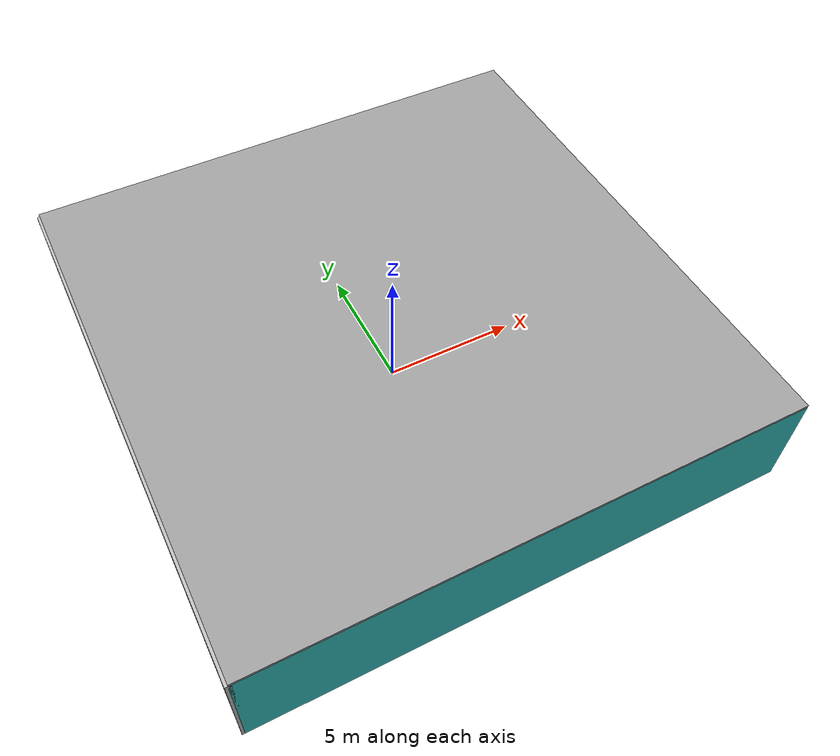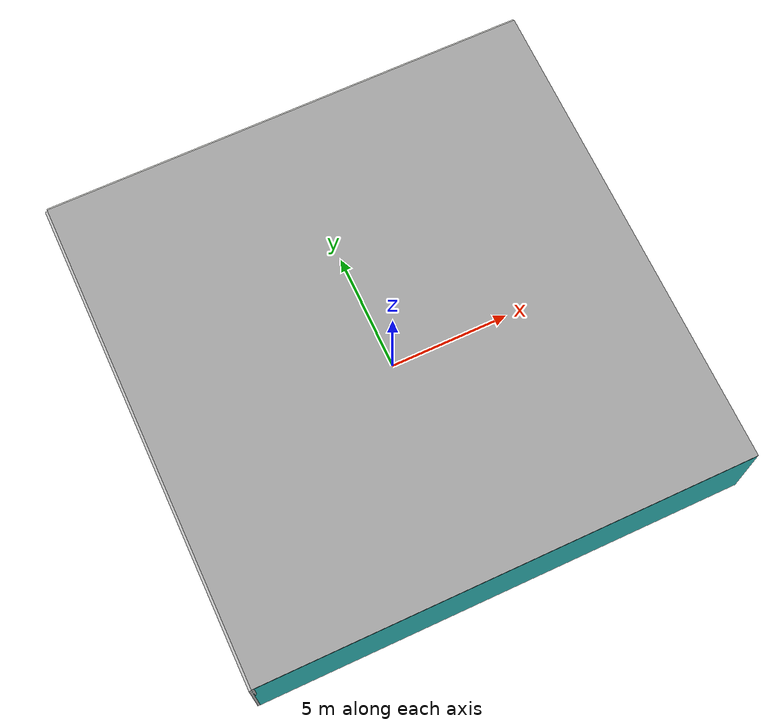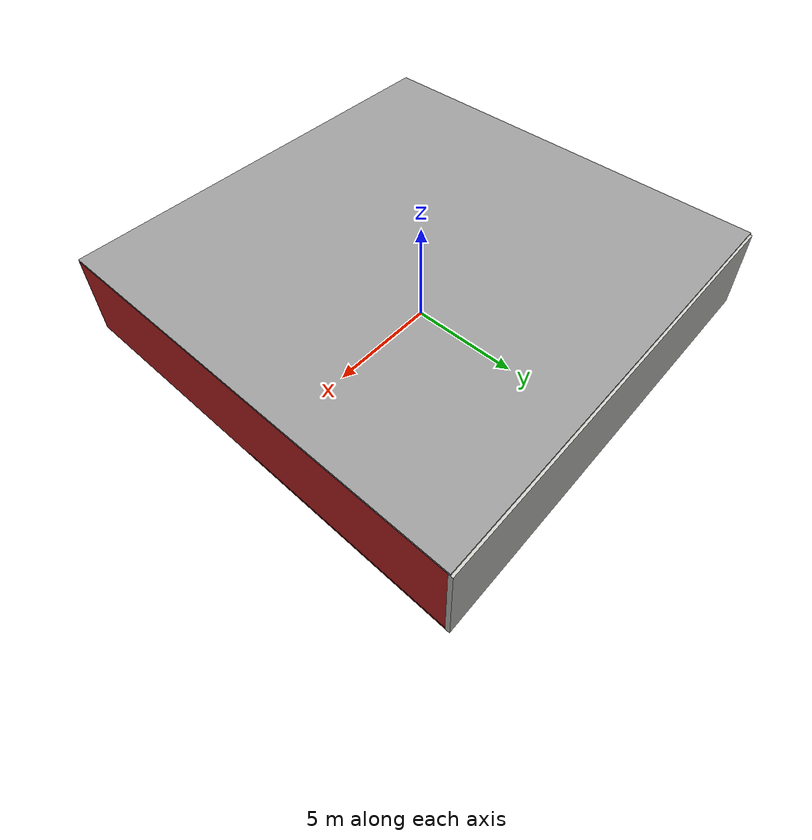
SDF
<sdf version="1.4">
 <world name="default">
  <physics type="ode">
   <max_step_size>0.001</max_step_size>
   <real_time_factor>1</real_time_factor>
   <real_time_update_rate>1000</real_time_update_rate>
   <gravity>0 0 -9.8</gravity>
  </physics>
  <scene><ambient>0.4 0.4 0.4 1</ambient><background>0.7 0.7 0.7 1</background><shadows>1</shadows></scene>
  <model name="Surrounding">
   <static>1</static>
   <link name="Ceiling">
    <collision name="Ceiling_Collision"><geometry><box><size>20 20 0.1</size></box></geometry></collision>
    <visual name="Ceiling_Visual">
     <geometry><box><size>20 20 0.1</size></box></geometry>
     <material>
      <script><uri>file://media/materials/scripts/gazebo.material</uri><name>Gazebo/GreyGradientSky</name></script>
     </material>
    </visual>
    <pose>0 0 4.05 0 0 0</pose>
   </link>
   <link name="Wall_South">
    <collision name="Wall_South_Collision">
     <geometry><box><size>20 0 4</size></box></geometry>
     <pose>0 0 2 0 -0 0</pose>
    </collision>
    <visual name="Wall_South_Visual">
     <pose>0 0 2 0 -0 0</pose>
     <geometry><box><size>20 0 4</size></box></geometry>
     <material>
      <script><uri>file://media/materials/scripts/gazebo.material</uri><name>Gazebo/Turquoise</name></script>
     </material>
    </visual>
    <velocity_decay><linear>0</linear><angular>0</angular></velocity_decay>
    <pose>0 -10 0 0 -0 0</pose>
   </link>
   <link name="Wall_East">
    <collision name="Wall_21_Collision">
     <geometry><box><size>20 0 4</size></box></geometry>
     <pose>0 0 2 0 -0 0</pose>
    </collision>
    <visual name="Wall_21_Visual">
     <pose>0 0 2 0 -0 0</pose>
     <geometry><box><size>20 0 4</size></box></geometry>
     <material>
      <script><uri>file://media/materials/scripts/gazebo.material</uri><name>Gazebo/Red</name></script>
     </material>
    </visual>
    <velocity_decay><linear>0</linear><angular>0</angular></velocity_decay>
    <pose>10 0 0 0 -0 1.5708</pose>
   </link>
   <link name="Wall_North">
    <collision name="Wall_22_Collision">
     <geometry><box><size>20 0.2 4</size></box></geometry>
     <pose>0 0 2 0 -0 0</pose>
    </collision>
    <visual name="Wall_22_Visual">
     <pose>0 0 2 0 -0 0</pose>
     <geometry><box><size>20 0.2 4</size></box></geometry>
     <material>
      <script><uri>file://media/materials/scripts/gazebo.material</uri><name>Gazebo/CeilingTiled</name></script>
     </material>
    </visual>
    <velocity_decay><linear>0</linear><angular>0</angular></velocity_decay>
    <pose>0 10 0 0 -0 0</pose>
   </link>
   <link name="Wall_West">
    <collision name="Wall_23_Collision">
     <geometry><box><size>20 0.2 4</size></box></geometry>
     <pose>0 0 2 0 -0 0</pose>
    </collision>
    <visual name="Wall_23_Visual">
     <pose>0 0 2 0 -0 0</pose>
     <geometry><box><size>20 0.2 4</size></box></geometry>
     <material>
      <script><uri>file://media/materials/scripts/gazebo.material</uri><name>Gazebo/LightOff</name></script>
     </material>
    </visual>
    <velocity_decay><linear>0</linear><angular>0</angular></velocity_decay>
    <pose>-10 0 0 0 0 -1.5708</pose>
   </link>
   <link name="Ground_link">
    <collision name="collision">
     <pose>0 0 .05 0 -0 0</pose>
     <geometry><box><size>20 20 0.1</size></box></geometry>
    </collision>
    <visual name="visual">
     <pose>0 0 .05 0 -0 0</pose>
     <geometry><box><size>20 20 0.1</size></box></geometry>
     <material>
      <script><uri>file://media/materials/scripts/gazebo.material</uri><name>Gazebo/RedTransparent</name></script>
     </material>
    </visual>
   </link>
   <static>1</static>
  </model>
  <spherical_coordinates>
   <surface_model>EARTH_WGS84</surface_model>
   <latitude_deg>0</latitude_deg>
   <longitude_deg>0</longitude_deg>
   <elevation>0</elevation>
   <heading_deg>0</heading_deg>
  </spherical_coordinates>
  <light name="lightball_0" type="diffuse">
   <diffuse>0.8 0.8 0.8 1</diffuse>
   <specular>0.2 0.2 0.2 1</specular>
   <attenuation>
    <range>100</range>
    <constant>0.7</constant>
    <linear>0.01</linear>
    <quadratic>0.001</quadratic>
   </attenuation>
   <direction>-0.5 0.1 -0.9</direction>
   <pose>3.64760996766 1.44496342476 2.11530801846 0 0 0</pose>
  </light>
  <light name="lightball_1" type="diffuse">
   <diffuse>0.8 0.8 0.8 1</diffuse>
   <specular>0.2 0.2 0.2 1</specular>
   <attenuation>
    <range>100</range>
    <constant>0.7</constant>
    <linear>0.01</linear>
    <quadratic>0.001</quadratic>
   </attenuation>
   <direction>-0.5 0.1 -0.9</direction>
   <pose>-9.10283430223 7.0985300135 1.13873848671 0 0 0</pose>
  </light>
  <light name="lightball_2" type="diffuse">
   <diffuse>0.8 0.8 0.8 1</diffuse>
   <specular>0.2 0.2 0.2 1</specular>
   <attenuation>
    <range>100</range>
    <constant>0.7</constant>
    <linear>0.01</linear>
    <quadratic>0.001</quadratic>
   </attenuation>
   <direction>-0.5 0.1 -0.9</direction>
   <pose>7.2083766569 -9.36445132885 2.29691598558 0 0 0</pose>
  </light>
  <light name="lightball_3" type="diffuse">
   <diffuse>0.8 0.8 0.8 1</diffuse>
   <specular>0.2 0.2 0.2 1</specular>
   <attenuation>
    <range>100</range>
    <constant>0.7</constant>
    <linear>0.01</linear>
    <quadratic>0.001</quadratic>
   </attenuation>
   <direction>-0.5 0.1 -0.9</direction>
   <pose>2.04046476021 9.12683160858 3.30821378983 0 0 0</pose>
  </light>
  <light name="lightball_4" type="diffuse">
   <diffuse>0.8 0.8 0.8 1</diffuse>
   <specular>0.2 0.2 0.2 1</specular>
   <attenuation>
    <range>100</range>
    <constant>0.7</constant>
    <linear>0.01</linear>
    <quadratic>0.001</quadratic>
   </attenuation>
   <direction>-0.5 0.1 -0.9</direction>
   <pose>-1.03398241111 2.95757915079 0.790585028878 0 0 0</pose>
  </light>
  <light name="lightball_5" type="diffuse">
   <diffuse>0.8 0.8 0.8 1</diffuse>
   <specular>0.2 0.2 0.2 1</specular>
   <attenuation>
    <range>100</range>
    <constant>0.7</constant>
    <linear>0.01</linear>
    <quadratic>0.001</quadratic>
   </attenuation>
   <direction>-0.5 0.1 -0.9</direction>
   <pose>-3.75013605601 -4.39227880148 1.60338238951 0 0 0</pose>
  </light>
  <light name="lightball_6" type="diffuse">
   <diffuse>0.8 0.8 0.8 1</diffuse>
   <specular>0.2 0.2 0.2 1</specular>
   <attenuation>
    <range>100</range>
    <constant>0.7</constant>
    <linear>0.01</linear>
    <quadratic>0.001</quadratic>
   </attenuation>
   <direction>-0.5 0.1 -0.9</direction>
   <pose>8.32205670746 -3.77404941137 2.20076673516 0 0 0</pose>
  </light>
  <light name="lightball_7" type="diffuse">
   <diffuse>0.8 0.8 0.8 1</diffuse>
   <specular>0.2 0.2 0.2 1</specular>
   <attenuation>
    <range>100</range>
    <constant>0.7</constant>
    <linear>0.01</linear>
    <quadratic>0.001</quadratic>
   </attenuation>
   <direction>-0.5 0.1 -0.9</direction>
   <pose>3.825463484 4.35548839545 1.82835944444 0 0 0</pose>
  </light>
  <light name="lightball_8" type="diffuse">
   <diffuse>0.8 0.8 0.8 1</diffuse>
   <specular>0.2 0.2 0.2 1</specular>
   <attenuation>
    <range>100</range>
    <constant>0.7</constant>
    <linear>0.01</linear>
    <quadratic>0.001</quadratic>
   </attenuation>
   <direction>-0.5 0.1 -0.9</direction>
   <pose>-7.7376895057 4.60650504911 2.21888985787 0 0 0</pose>
  </light>
  <light name="lightball_9" type="diffuse">
   <diffuse>0.8 0.8 0.8 1</diffuse>
   <specular>0.2 0.2 0.2 1</specular>
   <attenuation>
    <range>100</range>
    <constant>0.7</constant>
    <linear>0.01</linear>
    <quadratic>0.001</quadratic>
   </attenuation>
   <direction>-0.5 0.1 -0.9</direction>
   <pose>7.69178343788 -0.548578465849 0.890916537488 0 0 0</pose>
  </light>
  <light name="lightball_10" type="diffuse">
   <diffuse>0.8 0.8 0.8 1</diffuse>
   <specular>0.2 0.2 0.2 1</specular>
   <attenuation>
    <range>100</range>
    <constant>0.7</constant>
    <linear>0.01</linear>
    <quadratic>0.001</quadratic>
   </attenuation>
   <direction>-0.5 0.1 -0.9</direction>
   <pose>4.19662246303 -6.16014503644 1.01111479713 0 0 0</pose>
  </light>
  <light name="lightball_11" type="diffuse">
   <diffuse>0.8 0.8 0.8 1</diffuse>
   <specular>0.2 0.2 0.2 1</specular>
   <attenuation>
    <range>100</range>
    <constant>0.7</constant>
    <linear>0.01</linear>
    <quadratic>0.001</quadratic>
   </attenuation>
   <direction>-0.5 0.1 -0.9</direction>
   <pose>0.931632870258 -7.87135247992 2.23631678132 0 0 0</pose>
  </light>
  <include><uri>model://table</uri><pose>-6.79118013681 1.72391837299 0 0 0 0.209805220548</pose></include>
  <include>
   <uri>model://construction_cone</uri>
   <pose>2.02603332043 -2.32164870876 0 0 0 0.157635979071</pose>
  </include>
  <include><uri>model://cabinet</uri><pose>1.07158044195 8.40661133103 0 0 0 0.914098087291</pose></include>
  <include>
   <uri>model://construction_cone</uri>
   <pose>8.66557707637 2.4107997257 0 0 0 0.0130087703902</pose>
  </include>
  <include><uri>model://table</uri><pose>6.97785700431 8.49104943745 0 0 0 1.70658499518</pose></include>
 </world>
</sdf>

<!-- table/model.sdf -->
<sdf version="1.5">
  <model name="table">
    <static>true</static>
    <link name="link">
      <collision name="surface">
        <pose>0 0 1.0 0 0 0</pose>
        <geometry>
          <box>
            <size>1.5 0.8 0.03</size>
          </box>
        </geometry>
        <surface>
          <friction>
            <ode>
              <mu>0.6</mu>
              <mu2>0.6</mu2>
            </ode>
          </friction>
        </surface>
      </collision>
      <visual name="visual1">
        <pose>0 0 1.0 0 0 0</pose>
        <geometry>
          <box>
            <size>1.5 0.8 0.03</size>
          </box>
        </geometry>
        <material>
          <script>
            <uri>model://media/materials/scripts/gazebo.material</uri>
            <name>Gazebo/Wood</name>
          </script>
        </material>
      </visual>
      <collision name="front_left_leg">
        <pose>0.68 0.38 0.5 0 0 0</pose>
        <geometry>
          <cylinder>
            <radius>0.02</radius>
            <length>1.0</length>
          </cylinder>
        </geometry>
      </collision>
      <visual name="front_left_leg">
        <pose>0.68 0.38 0.5 0 0 0</pose>
        <geometry>
          <cylinder>
            <radius>0.02</radius>
            <length>1.0</length>
          </cylinder>
        </geometry>
        <material>
          <script>
            <uri>model://media/materials/scripts/gazebo.material</uri>
            <name>Gazebo/Grey</name>
          </script>
        </material>
      </visual>
      <collision name="front_right_leg">
        <pose>0.68 -0.38 0.5 0 0 0</pose>
        <geometry>
          <cylinder>
            <radius>0.02</radius>
            <length>1.0</length>
          </cylinder>
        </geometry>
      </collision>
      <visual name="front_right_leg">
        <pose>0.68 -0.38 0.5 0 0 0</pose>
        <geometry>
          <cylinder>
            <radius>0.02</radius>
            <length>1.0</length>
          </cylinder>
        </geometry>
        <material>
          <script>
            <uri>model://media/materials/scripts/gazebo.material</uri>
            <name>Gazebo/Grey</name>
          </script>
        </material>
      </visual>
      <collision name="back_right_leg">
        <pose>-0.68 -0.38 0.5 0 0 0</pose>
        <geometry>
          <cylinder>
            <radius>0.02</radius>
            <length>1.0</length>
          </cylinder>
        </geometry>
      </collision>
      <visual name="back_right_leg">
        <pose>-0.68 -0.38 0.5 0 0 0</pose>
        <geometry>
          <cylinder>
            <radius>0.02</radius>
            <length>1.0</length>
          </cylinder>
        </geometry>
        <material>
          <script>
            <uri>model://media/materials/scripts/gazebo.material</uri>
            <name>Gazebo/Grey</name>
          </script>
        </material>
      </visual>
      <collision name="back_left_leg">
        <pose>-0.68 0.38 0.5 0 0 0</pose>
        <geometry>
          <cylinder>
            <radius>0.02</radius>
            <length>1.0</length>
          </cylinder>
        </geometry>
      </collision>
      <visual name="back_left_leg">
        <pose>-0.68 0.38 0.5 0 0 0</pose>
        <geometry>
          <cylinder>
            <radius>0.02</radius>
            <length>1.0</length>
          </cylinder>
        </geometry>
        <material>
          <script>
            <uri>model://media/materials/scripts/gazebo.material</uri>
            <name>Gazebo/Grey</name>
          </script>
        </material>
      </visual>
    </link>
  </model>
</sdf>

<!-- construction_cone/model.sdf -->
<sdf version="1.5">
  <model name="Construction Cone">
    <link name="link">
      <collision name="collision">
        <geometry>
          <mesh>
            <scale>10 10 10</scale>
            <uri>file://isr-testbed/construction_cone/meshes/construction_cone.dae</uri>
          </mesh>
        </geometry>
      </collision>
      <visual name="visual">
        <geometry>
          <mesh>
            <scale>10 10 10</scale>
            <uri>file://isr-testbed/construction_cone/meshes/construction_cone.dae</uri>
          </mesh>
        </geometry>
      </visual>
    </link>
  </model>
</sdf>

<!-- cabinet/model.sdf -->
<sdf version="1.5">
  <model name="cabinet">
    <static>true</static>
    <link name="cabinet_bottom_plate">
      <inertial>
        <pose>0 0 -1 0 0 0</pose>
        <inertia>
          <ixx>2.050000</ixx>
          <ixy>0</ixy>
          <ixz>0</ixz>
          <iyy>2.050000</iyy>
          <iyz>0</iyz>
          <izz>2.050000</izz>
        </inertia>
        <mass>25.000000</mass>
      </inertial>
      <collision name="cabinet_bottom_plate_geom">
        <pose>0 0 0.010000 0 0 0</pose>
        <geometry>
          <box>
            <size>0.450000 0.450000 0.020000</size>
          </box>
        </geometry>
      </collision>
      <visual name="cabinet_bottom_plate_geom_visual">
        <pose>0 0 0.010000 0 0 0</pose>
        <geometry>
          <box>
            <size>0.450000 0.450000 0.020000</size>
          </box>
        </geometry>
        <material>
          <script>
            <uri>model://media/materials/scripts/gazebo.material</uri>
            <name>Gazebo/Wood</name>
          </script>
        </material>
      </visual>
      <collision name="cabinet_bottom_plate_geom_cabinet_back_plate">
        <pose>0.235000 0 0.510000 0 0 0</pose>
        <geometry>
          <box>
            <size>0.020000 0.450000 1.020000</size>
          </box>
        </geometry>
      </collision>
      <visual name="cabinet_bottom_plate_geom_cabinet_back_plate_visual">
        <pose>0.235000 0 0.510000 0 0 0</pose>
        <geometry>
          <box>
            <size>0.020000 0.450000 1.020000</size>
          </box>
        </geometry>
        <material>
          <script>
            <uri>model://media/materials/scripts/gazebo.material</uri>
            <name>Gazebo/Wood</name>
          </script>
        </material>
      </visual>
      <collision name="cabinet_bottom_plate_geom_cabinet_left_plate">
        <pose>0 0.235000 0.510000 0 0 0</pose>
        <geometry>
          <box>
            <size>0.450000 0.020000 1.020000</size>
          </box>
        </geometry>
      </collision>
      <visual name="cabinet_bottom_plate_geom_cabinet_left_plate_visual">
        <pose>0 0.235000 0.510000 0 0 0</pose>
        <geometry>
          <box>
            <size>0.450000 0.020000 1.020000</size>
          </box>
        </geometry>
        <material>
          <script>
            <uri>model://media/materials/scripts/gazebo.material</uri>
            <name>Gazebo/Wood</name>
          </script>
        </material>
      </visual>
      <collision name="cabinet_bottom_plate_geom_cabinet_middle_plate">
        <pose>0 0 0.510000 0 0 0</pose>
        <geometry>
          <box>
            <size>0.450000 0.450000 0.020000</size>
          </box>
        </geometry>
      </collision>
      <visual name="cabinet_bottom_plate_geom_cabinet_middle_plate_visual">
        <pose>0 0 0.510000 0 0 0</pose>
        <geometry>
          <box>
            <size>0.450000 0.450000 0.020000</size>
          </box>
        </geometry>
        <material>
          <script>
            <uri>model://media/materials/scripts/gazebo.material</uri>
            <name>Gazebo/Wood</name>
          </script>
        </material>
      </visual>
      <collision name="cabinet_bottom_plate_geom_cabinet_right_plate">
        <pose>0 -0.235000 0.510000 0 0 0</pose>
        <geometry>
          <box>
            <size>0.450000 0.020000 1.020000</size>
          </box>
        </geometry>
      </collision>
      <visual name="cabinet_bottom_plate_geom_cabinet_right_plate_visual">
        <pose>0 -0.235000 0.510000 0 0 0</pose>
        <geometry>
          <box>
            <size>0.450000 0.020000 1.020000</size>
          </box>
        </geometry>
        <material>
          <script>
            <uri>model://media/materials/scripts/gazebo.material</uri>
            <name>Gazebo/Wood</name>
          </script>
        </material>
      </visual>
      <collision name="cabinet_bottom_plate_geom_cabinet_top_plate">
        <pose>0 0 1.010000 0 0 0</pose>
        <geometry>
          <box>
            <size>0.450000 0.450000 0.020000</size>
          </box>
        </geometry>
      </collision>
      <visual name="cabinet_bottom_plate_geom_cabinet_top_plate_visual">
        <pose>0 0 1.010000 0 0 0</pose>
        <geometry>
          <box>
            <size>0.450000 0.450000 0.020000</size>
          </box>
        </geometry>
        <material>
          <script>
            <uri>model://media/materials/scripts/gazebo.material</uri>
            <name>Gazebo/Wood</name>
          </script>
        </material>
      </visual>
    </link>
  </model>
</sdf>
